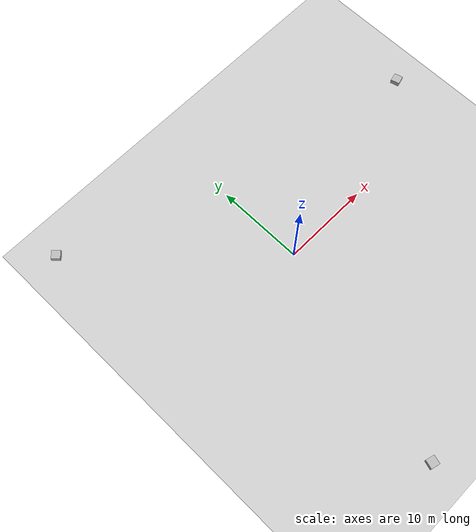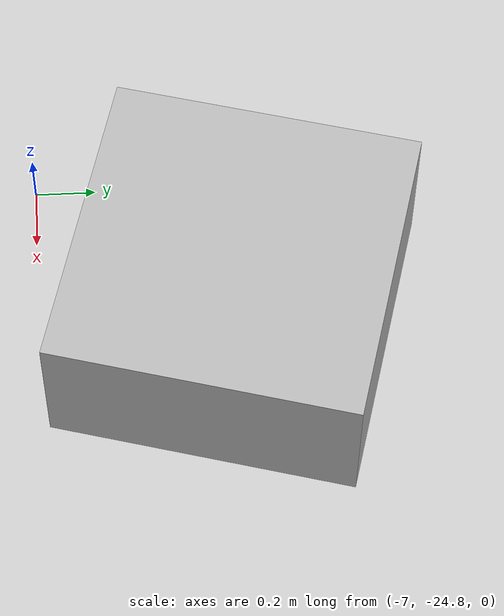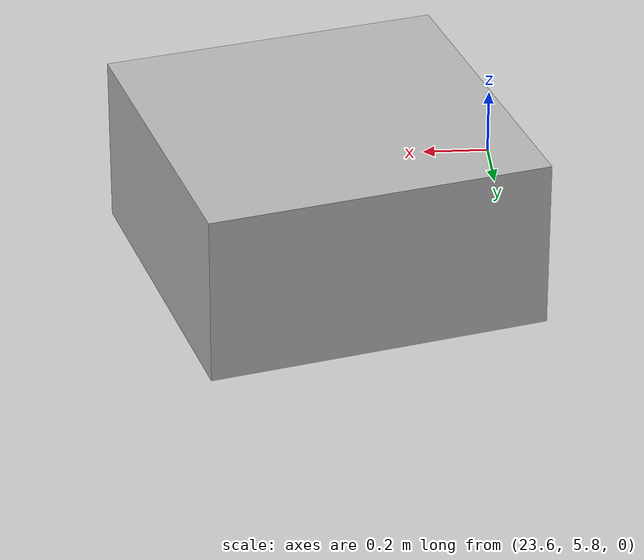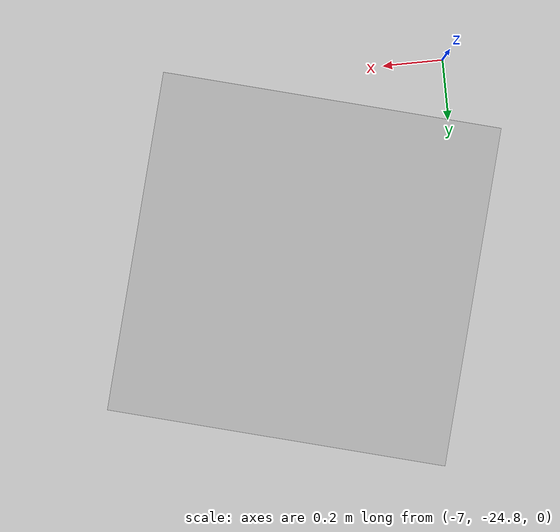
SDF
<?xml version="1.0" ?>
<sdf version="1.4">
  <world name="default">

    <!-- Ground Plane -->
    <include>
      <uri>model://ground_plane</uri>
    </include>

    <include>
      <uri>model://sun</uri>
    </include>

    <model name="myrobot1">
      <pose>24.15 6.47 0 0 0 0.262</pose>
      <link name="link">
        <collision name="collision">
          <geometry>
            <box>
              <size>1 1 1</size>
            </box>
          </geometry>
        </collision>

        <visual name="visual">
          <geometry>
            <box>
              <size>1 1 1</size>
            </box>
          </geometry>
        </visual>
      </link>
      <plugin name="gazebo_tutorials" filename="libgazebo_tutorials.so"/>
    </model>

    <model name="myrobot2">
      <pose>-17.68 17.68 0 0 0 2.356</pose>
      <link name="link">
        <collision name="collision">
          <geometry>
            <box>
              <size>1 1 1</size>
            </box>
          </geometry>
        </collision>

        <visual name="visual">
          <geometry>
            <box>
              <size>1 1 1</size>
            </box>
          </geometry>
        </visual>
      </link>
      <plugin name="gazebo_tutorials" filename="libgazebo_tutorials.so"/>
    </model>

    <model name="myrobot3">
      <pose>-6.47 -24.15 0 0 0 -1.833</pose>
      <link name="link">
        <collision name="collision">
          <geometry>
            <box>
              <size>1 1 1</size>
            </box>
          </geometry>
        </collision>

        <visual name="visual">
          <geometry>
            <box>
              <size>1 1 1</size>
            </box>
          </geometry>
        </visual>
      </link>
      <plugin name="gazebo_tutorials" filename="libgazebo_tutorials.so"/>
    </model>
      <!-- reference to your plugin -->
  </world>
</sdf>
